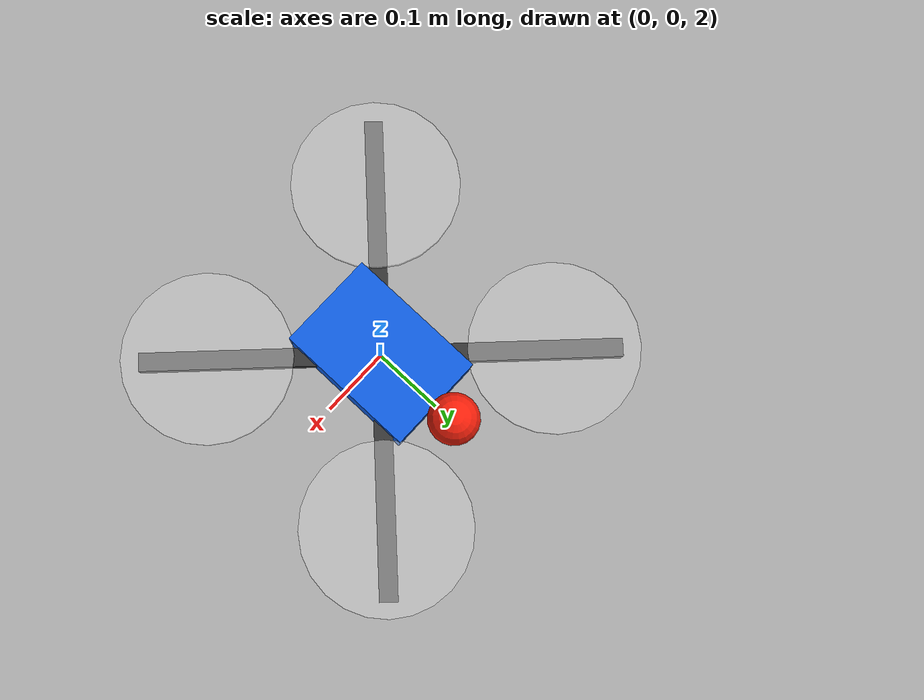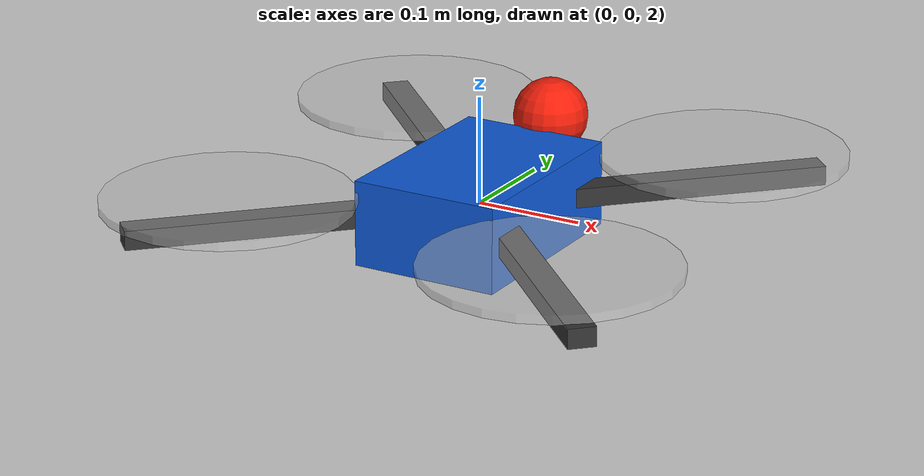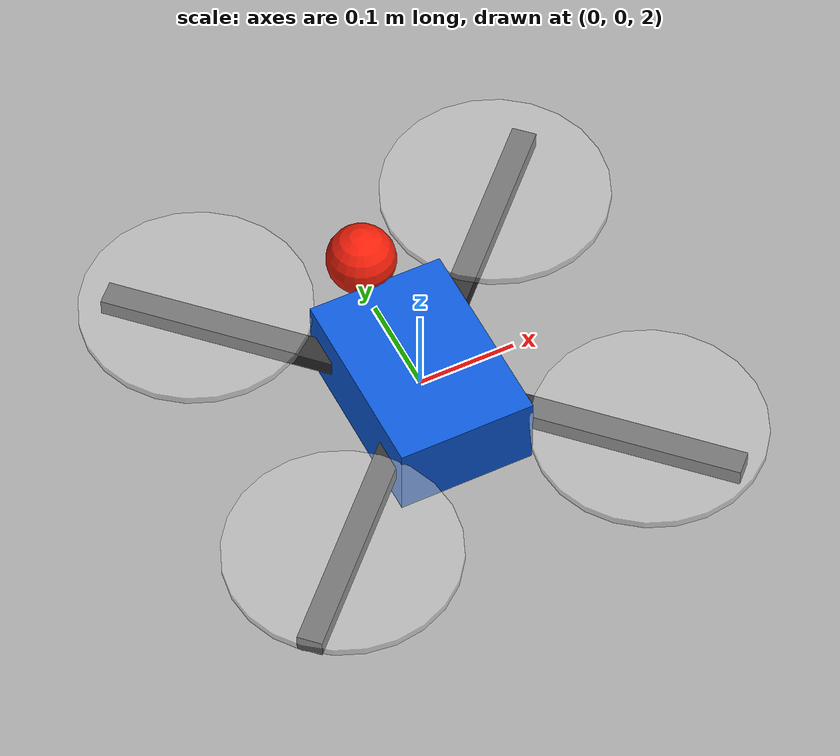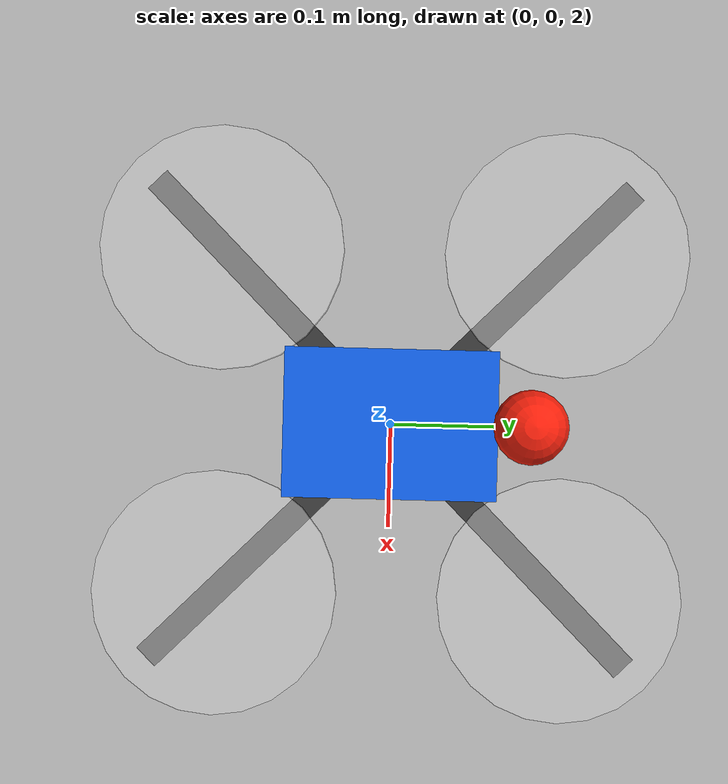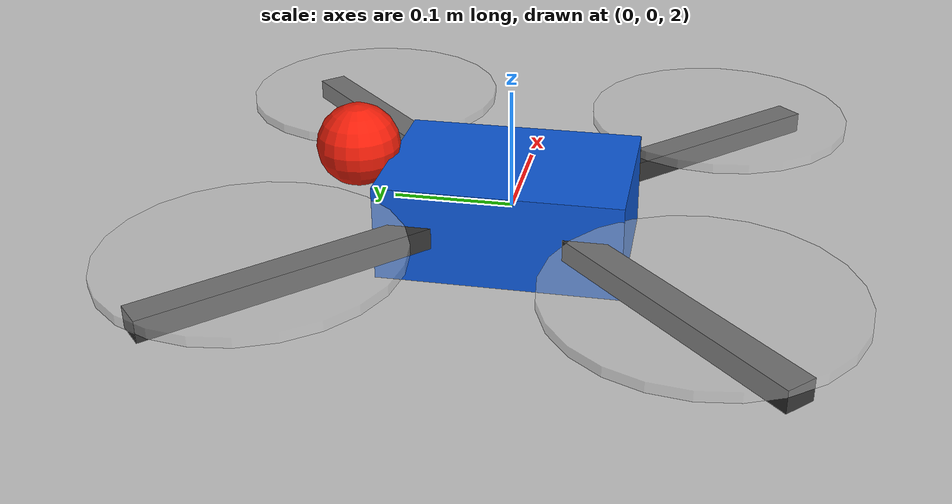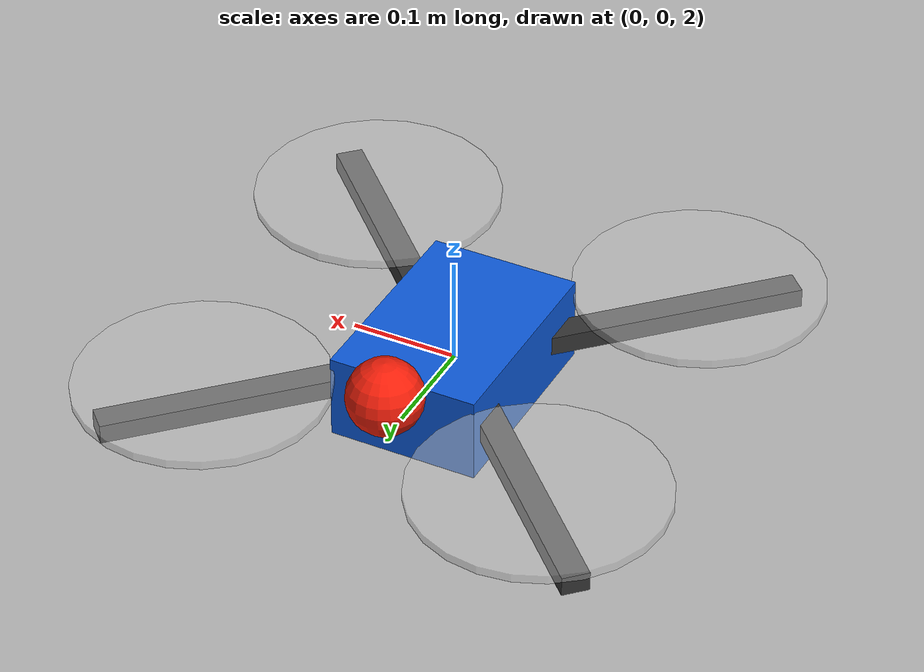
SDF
<?xml version="1.0"?>
<sdf version="1.11">
  <world name="quadrotor_world">
    <physics name="1ms" type="ignored">
      <max_step_size>0.001</max_step_size><real_time_factor>1.0</real_time_factor>
    </physics>
    <gravity>0 0 -9.80665</gravity>
    <atmosphere type="adiabatic"/>
    <plugin filename="gz-sim-physics-system" name="gz::sim::systems::Physics"/>
    <plugin filename="gz-sim-user-commands-system" name="gz::sim::systems::UserCommands"/>
    <plugin filename="gz-sim-scene-broadcaster-system" name="gz::sim::systems::SceneBroadcaster"/>
    <plugin filename="gz-sim-sensors-system" name="gz::sim::systems::Sensors"><render_engine>ogre2</render_engine></plugin>
    <light type="directional" name="sun">
      <pose>0 0 10 0 0 0</pose><cast_shadows>true</cast_shadows>
      <diffuse>0.8 0.8 0.8 1</diffuse><specular>0.2 0.2 0.2 1</specular>
      <direction>-0.4 0.2 -0.9</direction>
    </light>
    <model name="ground_plane">
      <static>true</static>
      <link name="link">
        <collision name="collision"><geometry><plane><normal>0 0 1</normal><size>100 100</size></plane></geometry></collision>
        <visual name="visual"><geometry><plane><normal>0 0 1</normal><size>100 100</size></plane></geometry><material><ambient>0.65 0.67 0.70 1</ambient><diffuse>0.65 0.67 0.70 1</diffuse></material></visual>
      </link>
    </model>
    <include><uri>model://learning_quadrotor</uri></include>
  </world>
</sdf>

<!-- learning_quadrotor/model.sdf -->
<sdf version="1.11">
  <model name="quadrotor">
    <!-- ENU yaw +90 deg makes body-forward point north, equivalent to NED yaw zero. -->
    <pose>0 0 2 0 0 1.57079632679</pose>
    <self_collide>false</self_collide>
    <link name="base_link">
      <inertial>
        <mass>1.46</mass>
        <inertia>
          <ixx>0.0288</ixx><iyy>0.0288</iyy><izz>0.0548</izz>
          <ixy>0</ixy><ixz>0</ixz><iyz>0</iyz>
        </inertia>
      </inertial>
      <collision name="body_collision">
        <geometry><box><size>0.20 0.14 0.08</size></box></geometry>
      </collision>
      <visual name="body_visual">
        <geometry><box><size>0.20 0.14 0.08</size></box></geometry>
        <material><ambient>0.03 0.18 0.45 1</ambient><diffuse>0.05 0.35 0.85 1</diffuse></material>
      </visual>
      <visual name="arm_one">
        <pose>0 0 0 0 0 0.785398</pose>
        <geometry><box><size>0.65 0.025 0.018</size></box></geometry>
        <material><ambient>0.12 0.12 0.12 1</ambient><diffuse>0.2 0.2 0.2 1</diffuse></material>
      </visual>
      <visual name="arm_two">
        <pose>0 0 0 0 0 -0.785398</pose>
        <geometry><box><size>0.65 0.025 0.018</size></box></geometry>
        <material><ambient>0.12 0.12 0.12 1</ambient><diffuse>0.2 0.2 0.2 1</diffuse></material>
      </visual>
      <visual name="front_marker">
        <pose>0.13 0 0.045 0 0 0</pose>
        <geometry><sphere><radius>0.035</radius></sphere></geometry>
        <material><ambient>0.95 0.12 0.04 1</ambient><diffuse>0.95 0.12 0.04 1</diffuse></material>
      </visual>
      <sensor name="imu" type="imu">
        <always_on>true</always_on><update_rate>200</update_rate><topic>/quadrotor/imu</topic>
        <imu>
          <angular_velocity>
            <x><noise type="gaussian"><mean>0</mean><stddev>0.001</stddev></noise></x>
            <y><noise type="gaussian"><mean>0</mean><stddev>0.001</stddev></noise></y>
            <z><noise type="gaussian"><mean>0</mean><stddev>0.001</stddev></noise></z>
          </angular_velocity>
          <linear_acceleration>
            <x><noise type="gaussian"><mean>0</mean><stddev>0.01</stddev></noise></x>
            <y><noise type="gaussian"><mean>0</mean><stddev>0.01</stddev></noise></y>
            <z><noise type="gaussian"><mean>0</mean><stddev>0.01</stddev></noise></z>
          </linear_acceleration>
        </imu>
      </sensor>
    </link>

    <!-- Index order implied by the trained JAX allocation: FR, FL, RL, RR. -->
    <link name="rotor_0"><pose relative_to="base_link"> 0.1626 -0.1626 0.025 0 0 0</pose><inertial><mass>0.01</mass><inertia><ixx>1e-5</ixx><iyy>1e-5</iyy><izz>2e-5</izz></inertia></inertial><visual name="v"><geometry><cylinder><radius>0.115</radius><length>0.008</length></cylinder></geometry><material><ambient>0.8 0.8 0.8 0.45</ambient><diffuse>0.8 0.8 0.8 0.45</diffuse></material></visual></link>
    <link name="rotor_1"><pose relative_to="base_link"> 0.1626  0.1626 0.025 0 0 0</pose><inertial><mass>0.01</mass><inertia><ixx>1e-5</ixx><iyy>1e-5</iyy><izz>2e-5</izz></inertia></inertial><visual name="v"><geometry><cylinder><radius>0.115</radius><length>0.008</length></cylinder></geometry><material><ambient>0.8 0.8 0.8 0.45</ambient><diffuse>0.8 0.8 0.8 0.45</diffuse></material></visual></link>
    <link name="rotor_2"><pose relative_to="base_link">-0.1626  0.1626 0.025 0 0 0</pose><inertial><mass>0.01</mass><inertia><ixx>1e-5</ixx><iyy>1e-5</iyy><izz>2e-5</izz></inertia></inertial><visual name="v"><geometry><cylinder><radius>0.115</radius><length>0.008</length></cylinder></geometry><material><ambient>0.8 0.8 0.8 0.45</ambient><diffuse>0.8 0.8 0.8 0.45</diffuse></material></visual></link>
    <link name="rotor_3"><pose relative_to="base_link">-0.1626 -0.1626 0.025 0 0 0</pose><inertial><mass>0.01</mass><inertia><ixx>1e-5</ixx><iyy>1e-5</iyy><izz>2e-5</izz></inertia></inertial><visual name="v"><geometry><cylinder><radius>0.115</radius><length>0.008</length></cylinder></geometry><material><ambient>0.8 0.8 0.8 0.45</ambient><diffuse>0.8 0.8 0.8 0.45</diffuse></material></visual></link>

    <joint name="rotor_0_joint" type="revolute"><parent>base_link</parent><child>rotor_0</child><axis><xyz>0 0 1</xyz><limit><lower>-1e16</lower><upper>1e16</upper></limit></axis></joint>
    <joint name="rotor_1_joint" type="revolute"><parent>base_link</parent><child>rotor_1</child><axis><xyz>0 0 1</xyz><limit><lower>-1e16</lower><upper>1e16</upper></limit></axis></joint>
    <joint name="rotor_2_joint" type="revolute"><parent>base_link</parent><child>rotor_2</child><axis><xyz>0 0 1</xyz><limit><lower>-1e16</lower><upper>1e16</upper></limit></axis></joint>
    <joint name="rotor_3_joint" type="revolute"><parent>base_link</parent><child>rotor_3</child><axis><xyz>0 0 1</xyz><limit><lower>-1e16</lower><upper>1e16</upper></limit></axis></joint>

    <plugin filename="gz-sim-odometry-publisher-system" name="gz::sim::systems::OdometryPublisher">
      <odom_frame>world</odom_frame><robot_base_frame>base_link</robot_base_frame>
      <odom_topic>/quadrotor/odometry</odom_topic><odom_publish_frequency>100</odom_publish_frequency>
      <dimensions>3</dimensions>
    </plugin>

    <!-- motorConstant * omega^2 = thrust; 9e-6 * 1000^2 = 9 N maximum. -->
    <plugin filename="gz-sim-multicopter-motor-model-system" name="gz::sim::systems::MulticopterMotorModel"><robotNamespace>quadrotor</robotNamespace><jointName>rotor_0_joint</jointName><linkName>rotor_0</linkName><turningDirection>ccw</turningDirection><timeConstantUp>0.0125</timeConstantUp><timeConstantDown>0.025</timeConstantDown><maxRotVelocity>1000</maxRotVelocity><motorConstant>9e-6</motorConstant><momentConstant>0.018</momentConstant><commandSubTopic>command/motor_speed</commandSubTopic><actuator_number>0</actuator_number><rotorDragCoefficient>8.06428e-5</rotorDragCoefficient><rollingMomentCoefficient>1e-6</rollingMomentCoefficient><motorSpeedPubTopic>motor_speed/0</motorSpeedPubTopic><rotorVelocitySlowdownSim>10</rotorVelocitySlowdownSim><motorType>velocity</motorType></plugin>
    <plugin filename="gz-sim-multicopter-motor-model-system" name="gz::sim::systems::MulticopterMotorModel"><robotNamespace>quadrotor</robotNamespace><jointName>rotor_1_joint</jointName><linkName>rotor_1</linkName><turningDirection>cw</turningDirection><timeConstantUp>0.0125</timeConstantUp><timeConstantDown>0.025</timeConstantDown><maxRotVelocity>1000</maxRotVelocity><motorConstant>9e-6</motorConstant><momentConstant>0.018</momentConstant><commandSubTopic>command/motor_speed</commandSubTopic><actuator_number>1</actuator_number><rotorDragCoefficient>8.06428e-5</rotorDragCoefficient><rollingMomentCoefficient>1e-6</rollingMomentCoefficient><motorSpeedPubTopic>motor_speed/1</motorSpeedPubTopic><rotorVelocitySlowdownSim>10</rotorVelocitySlowdownSim><motorType>velocity</motorType></plugin>
    <plugin filename="gz-sim-multicopter-motor-model-system" name="gz::sim::systems::MulticopterMotorModel"><robotNamespace>quadrotor</robotNamespace><jointName>rotor_2_joint</jointName><linkName>rotor_2</linkName><turningDirection>ccw</turningDirection><timeConstantUp>0.0125</timeConstantUp><timeConstantDown>0.025</timeConstantDown><maxRotVelocity>1000</maxRotVelocity><motorConstant>9e-6</motorConstant><momentConstant>0.018</momentConstant><commandSubTopic>command/motor_speed</commandSubTopic><actuator_number>2</actuator_number><rotorDragCoefficient>8.06428e-5</rotorDragCoefficient><rollingMomentCoefficient>1e-6</rollingMomentCoefficient><motorSpeedPubTopic>motor_speed/2</motorSpeedPubTopic><rotorVelocitySlowdownSim>10</rotorVelocitySlowdownSim><motorType>velocity</motorType></plugin>
    <plugin filename="gz-sim-multicopter-motor-model-system" name="gz::sim::systems::MulticopterMotorModel"><robotNamespace>quadrotor</robotNamespace><jointName>rotor_3_joint</jointName><linkName>rotor_3</linkName><turningDirection>cw</turningDirection><timeConstantUp>0.0125</timeConstantUp><timeConstantDown>0.025</timeConstantDown><maxRotVelocity>1000</maxRotVelocity><motorConstant>9e-6</motorConstant><momentConstant>0.018</momentConstant><commandSubTopic>command/motor_speed</commandSubTopic><actuator_number>3</actuator_number><rotorDragCoefficient>8.06428e-5</rotorDragCoefficient><rollingMomentCoefficient>1e-6</rollingMomentCoefficient><motorSpeedPubTopic>motor_speed/3</motorSpeedPubTopic><rotorVelocitySlowdownSim>10</rotorVelocitySlowdownSim><motorType>velocity</motorType></plugin>
  </model>
</sdf>
